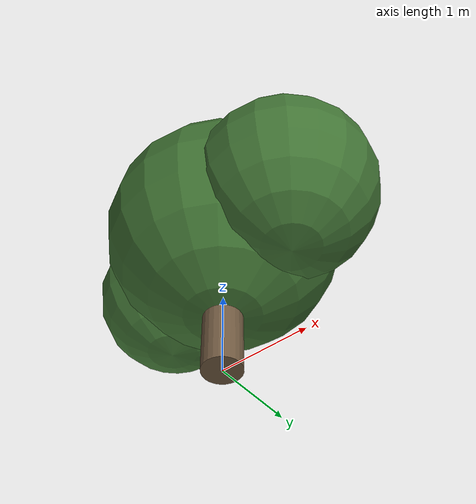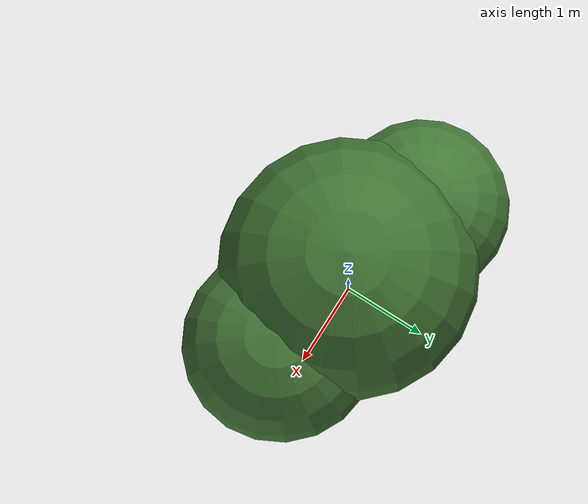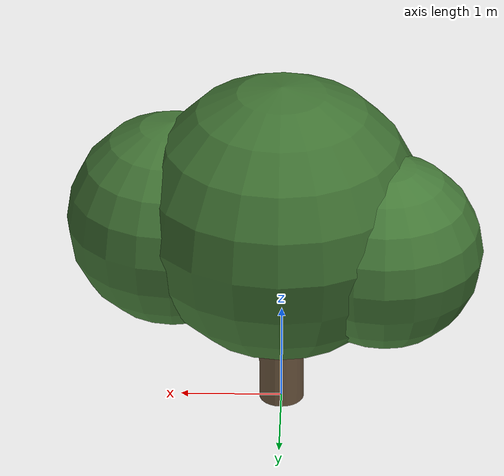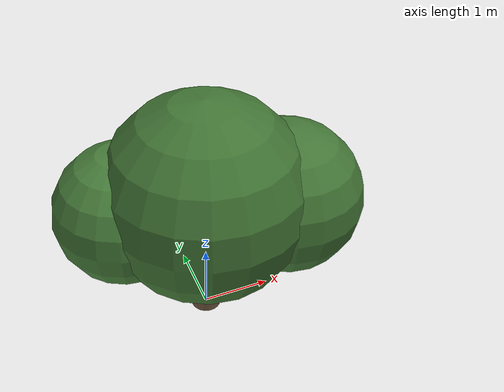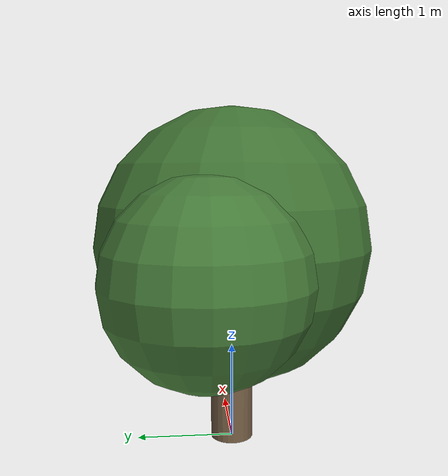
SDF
<?xml version="1.0"?>
<sdf version="1.10">
  <model name="fig_tree">
    <static>true</static>

    <!-- Lower trunk — thick, slightly knobby look (two cylinder segments) -->
    <link name="trunk_lower">
      <pose>0 0 0.40 0 0 0</pose>
      <visual name="v"><geometry><cylinder><radius>0.22</radius><length>0.80</length></cylinder></geometry>
        <material>
          <ambient>0.30 0.24 0.18 1</ambient>
          <diffuse>0.45 0.36 0.26 1</diffuse>
        </material>
      </visual>
      <collision name="c"><geometry><cylinder><radius>0.22</radius><length>0.80</length></cylinder></geometry></collision>
    </link>
    <link name="trunk_upper">
      <pose>0.05 0 1.15 0 0.10 0</pose>           <!-- slight tilt for character -->
      <visual name="v"><geometry><cylinder><radius>0.18</radius><length>0.70</length></cylinder></geometry>
        <material>
          <ambient>0.32 0.26 0.19 1</ambient>
          <diffuse>0.48 0.38 0.28 1</diffuse>
        </material>
      </visual>
    </link>

    <!-- Broad, low canopy — characteristic of figs (3 overlapping spheres) -->
    <link name="canopy_main">
      <pose>0 0 2.05 0 0 0</pose>
      <visual name="v"><geometry><sphere><radius>1.40</radius></sphere></geometry>
        <material>
          <ambient>0.18 0.32 0.15 1</ambient>     <!-- darker green than olive -->
          <diffuse>0.25 0.45 0.20 1</diffuse>
        </material>
      </visual>
    </link>
    <link name="canopy_left">
      <pose>-1.00 0.30 1.85 0 0 0</pose>
      <visual name="v"><geometry><sphere><radius>0.95</radius></sphere></geometry>
        <material>
          <ambient>0.20 0.34 0.16 1</ambient>
          <diffuse>0.27 0.48 0.22 1</diffuse>
        </material>
      </visual>
    </link>
    <link name="canopy_right">
      <pose>1.05 -0.20 1.90 0 0 0</pose>
      <visual name="v"><geometry><sphere><radius>1.05</radius></sphere></geometry>
        <material>
          <ambient>0.19 0.33 0.15 1</ambient>
          <diffuse>0.26 0.46 0.21 1</diffuse>
        </material>
      </visual>
    </link>

    <!-- A handful of figs (dark purple-burgundy) hanging on the canopy -->
    <link name="fig_1"><pose> 0.70 0.40 1.60 0 0 0</pose>
      <visual name="v"><geometry><sphere><radius>0.06</radius></sphere></geometry>
        <material><ambient>0.30 0.10 0.18 1</ambient><diffuse>0.45 0.15 0.25 1</diffuse><specular>0.2 0.1 0.15 1</specular></material>
      </visual>
    </link>
    <link name="fig_2"><pose>-0.50 0.60 1.70 0 0 0</pose>
      <visual name="v"><geometry><sphere><radius>0.055</radius></sphere></geometry>
        <material><ambient>0.32 0.10 0.20 1</ambient><diffuse>0.48 0.16 0.28 1</diffuse><specular>0.2 0.1 0.15 1</specular></material>
      </visual>
    </link>
    <link name="fig_3"><pose> 0.20 -0.55 1.55 0 0 0</pose>
      <visual name="v"><geometry><sphere><radius>0.05</radius></sphere></geometry>
        <material><ambient>0.30 0.10 0.18 1</ambient><diffuse>0.45 0.15 0.25 1</diffuse><specular>0.2 0.1 0.15 1</specular></material>
      </visual>
    </link>
    <link name="fig_4"><pose>-0.80 -0.30 1.65 0 0 0</pose>
      <visual name="v"><geometry><sphere><radius>0.055</radius></sphere></geometry>
        <material><ambient>0.28 0.09 0.17 1</ambient><diffuse>0.42 0.14 0.24 1</diffuse><specular>0.2 0.1 0.15 1</specular></material>
      </visual>
    </link>
    <link name="fig_5"><pose> 0.95 -0.45 1.75 0 0 0</pose>
      <visual name="v"><geometry><sphere><radius>0.05</radius></sphere></geometry>
        <material><ambient>0.32 0.10 0.20 1</ambient><diffuse>0.48 0.16 0.28 1</diffuse><specular>0.2 0.1 0.15 1</specular></material>
      </visual>
    </link>

    <joint name="j_trunk_u"  type="fixed"><parent>trunk_lower</parent><child>trunk_upper</child></joint>
    <joint name="j_main"     type="fixed"><parent>trunk_lower</parent><child>canopy_main</child></joint>
    <joint name="j_left"     type="fixed"><parent>trunk_lower</parent><child>canopy_left</child></joint>
    <joint name="j_right"    type="fixed"><parent>trunk_lower</parent><child>canopy_right</child></joint>
    <joint name="j_f1"       type="fixed"><parent>trunk_lower</parent><child>fig_1</child></joint>
    <joint name="j_f2"       type="fixed"><parent>trunk_lower</parent><child>fig_2</child></joint>
    <joint name="j_f3"       type="fixed"><parent>trunk_lower</parent><child>fig_3</child></joint>
    <joint name="j_f4"       type="fixed"><parent>trunk_lower</parent><child>fig_4</child></joint>
    <joint name="j_f5"       type="fixed"><parent>trunk_lower</parent><child>fig_5</child></joint>
  </model>
</sdf>
